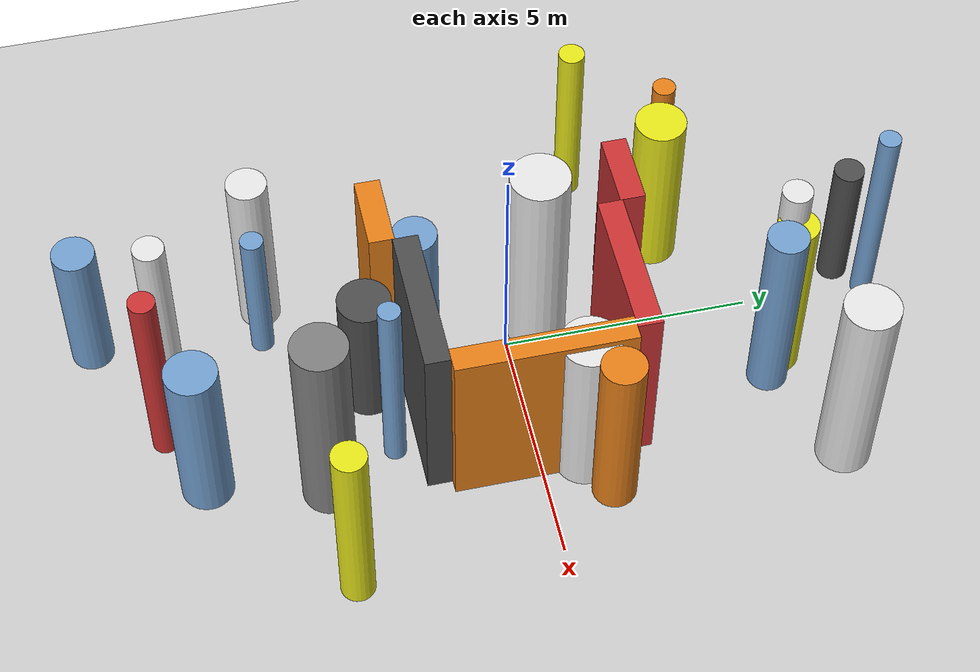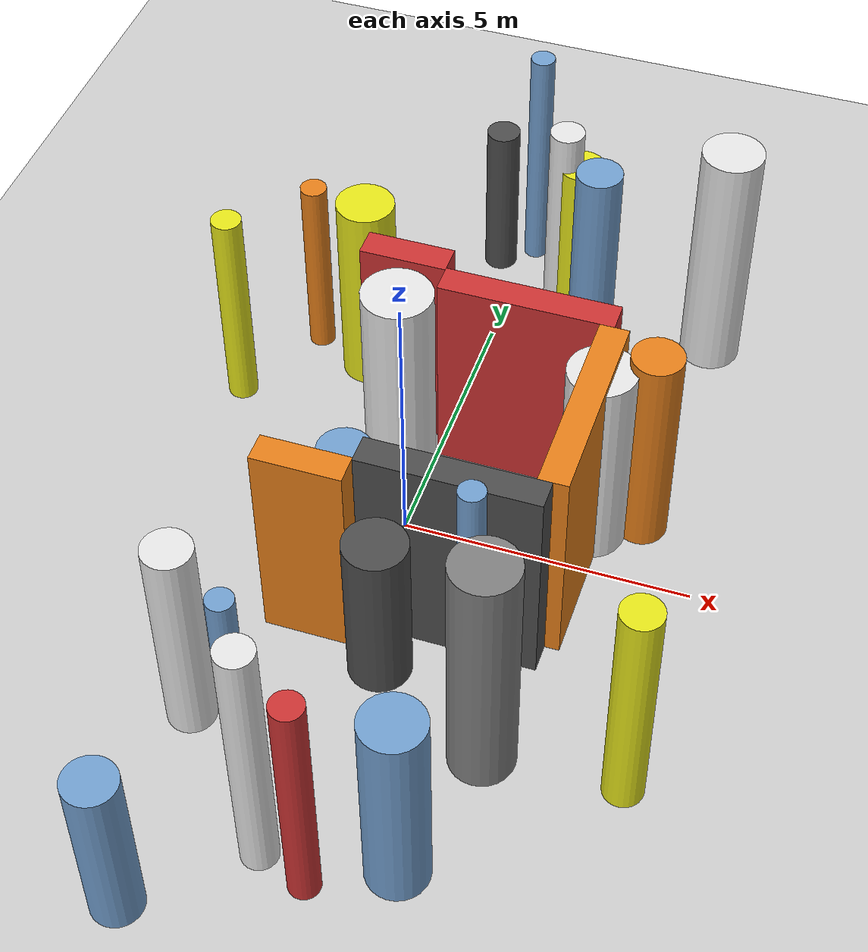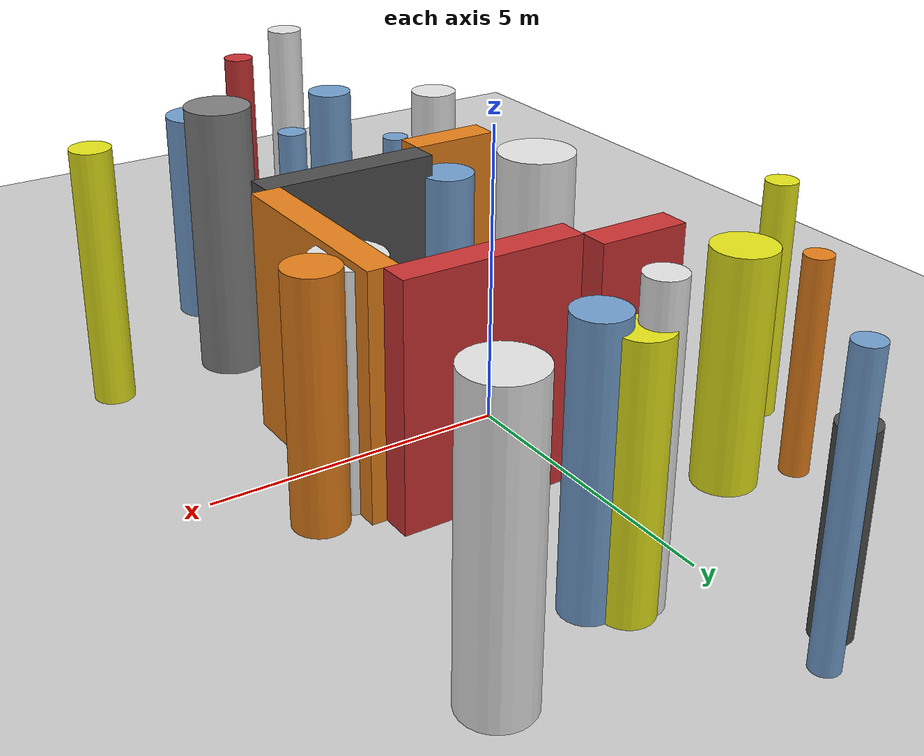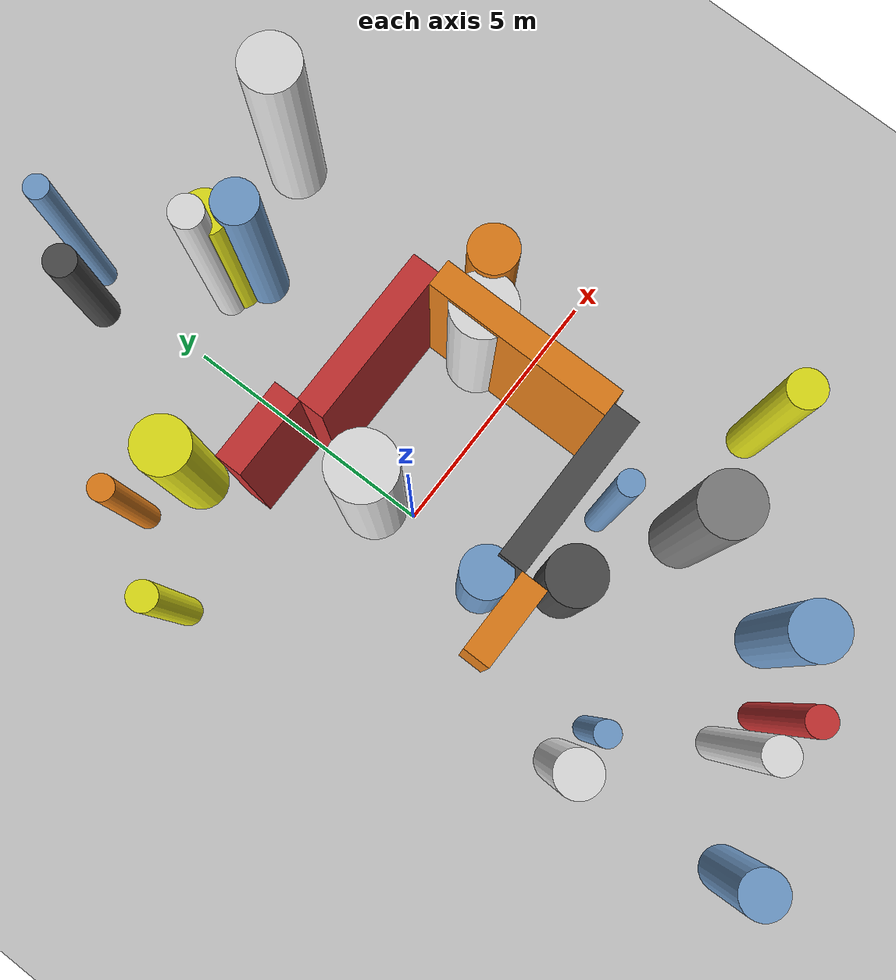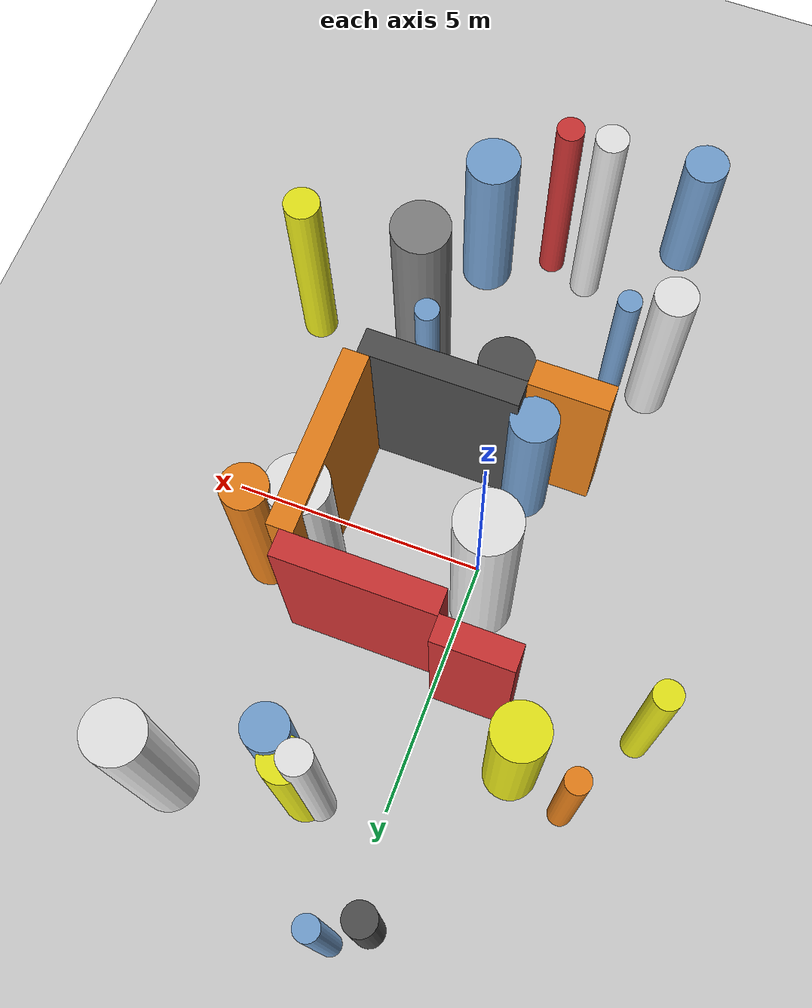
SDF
<?xml version='1.0'?>
<sdf version='1.6'>
  <world name='routeA_rl_v1__dense_recovery__rl_train__cul_de_sac_trap__000084'>
    <!-- Sun light -->
    <light name='sun' type='directional'>
      <cast_shadows>1</cast_shadows>
      <pose>0 0 10 0 0 0</pose>
      <diffuse>0.8 0.8 0.8 1</diffuse>
      <specular>0.2 0.2 0.2 1</specular>
      <attenuation>
        <range>1000</range>
        <constant>0.9</constant>
        <linear>0.01</linear>
        <quadratic>0.001</quadratic>
      </attenuation>
      <direction>-0.5 0.1 -0.9</direction>
    </light>

    <!-- Ground plane -->
    <model name='ground_plane'>
      <static>1</static>
      <link name='link'>
        <collision name='collision'>
          <geometry>
            <plane>
              <normal>0 0 1</normal>
              <size>100 100</size>
            </plane>
          </geometry>
          <surface>
            <contact>
              <collide_bitmask>65535</collide_bitmask>
              <ode/>
            </contact>
            <friction>
              <ode>
                <mu>100</mu>
                <mu2>50</mu2>
              </ode>
              <torsional><ode/></torsional>
            </friction>
            <bounce/>
          </surface>
          <max_contacts>10</max_contacts>
        </collision>
        <visual name='visual'>
          <cast_shadows>0</cast_shadows>
          <geometry>
            <plane>
              <normal>0 0 1</normal>
              <size>100 100</size>
            </plane>
          </geometry>
          <material>
            <script>
              <uri>file://media/materials/scripts/gazebo.material</uri>
              <n>Gazebo/Grey</n>
            </script>
          </material>
        </visual>
      </link>
    </model>

    <!-- Environment -->
    <magnetic_field>6e-06 2.3e-05 -4.2e-05</magnetic_field>
    <atmosphere type='adiabatic'/>
    <physics name='default_physics' default='0' type='ode'>
      <gravity>0 0 -9.8</gravity>
      <max_step_size>0.004</max_step_size>
      <real_time_factor>1</real_time_factor>
      <real_time_update_rate>250</real_time_update_rate>
    </physics>
    <scene>
      <ambient>0.4 0.4 0.4 1</ambient>
      <background>0.7 0.7 0.7 1</background>
      <shadows>1</shadows>
    </scene>
    <wind/>
    <spherical_coordinates>
      <surface_model>EARTH_WGS84</surface_model>
      <latitude_deg>0</latitude_deg>
      <longitude_deg>0</longitude_deg>
      <elevation>0</elevation>
      <heading_deg>0</heading_deg>
    </spherical_coordinates>

    <!-- ============ OBSTACLES (28) ============ -->
    <model name='trap_side_l'>
      <static>1</static>
      <link name='link'>
        <visual name='visual'>
          <geometry>
            <box>
              <size>3.0000 0.5000 4.0000</size>
            </box>
          </geometry>
          <material>
            <script>
              <n>Gazebo/DarkGrey</n>
              <uri>file://media/materials/scripts/gazebo.material</uri>
            </script>
            <ambient>0.3 0.3 0.3 1</ambient>
          </material>
        </visual>
        <collision name='collision'>
          <geometry>
            <box>
              <size>3.0000 0.5000 4.0000</size>
            </box>
          </geometry>
          <max_contacts>10</max_contacts>
          <surface>
            <contact><ode/></contact>
            <bounce/>
            <friction>
              <ode><mu>1</mu><mu2>1</mu2></ode>
              <torsional><ode/></torsional>
            </friction>
          </surface>
        </collision>
      </link>
      <pose>1.5000 -2.0000 2.0000 0 0 0.0000</pose>
    </model>

    <model name='trap_side_r'>
      <static>1</static>
      <link name='link'>
        <visual name='visual'>
          <geometry>
            <box>
              <size>3.0000 0.5000 4.0000</size>
            </box>
          </geometry>
          <material>
            <script>
              <n>Gazebo/Red</n>
              <uri>file://media/materials/scripts/gazebo.material</uri>
            </script>
            <ambient>0.8 0.2 0.2 1</ambient>
          </material>
        </visual>
        <collision name='collision'>
          <geometry>
            <box>
              <size>3.0000 0.5000 4.0000</size>
            </box>
          </geometry>
          <max_contacts>10</max_contacts>
          <surface>
            <contact><ode/></contact>
            <bounce/>
            <friction>
              <ode><mu>1</mu><mu2>1</mu2></ode>
              <torsional><ode/></torsional>
            </friction>
          </surface>
        </collision>
      </link>
      <pose>1.5000 2.0000 2.0000 0 0 0.0000</pose>
    </model>

    <model name='trap_back'>
      <static>1</static>
      <link name='link'>
        <visual name='visual'>
          <geometry>
            <box>
              <size>0.5000 3.5000 4.0000</size>
            </box>
          </geometry>
          <material>
            <script>
              <n>Gazebo/Orange</n>
              <uri>file://media/materials/scripts/gazebo.material</uri>
            </script>
            <ambient>0.9 0.5 0.1 1</ambient>
          </material>
        </visual>
        <collision name='collision'>
          <geometry>
            <box>
              <size>0.5000 3.5000 4.0000</size>
            </box>
          </geometry>
          <max_contacts>10</max_contacts>
          <surface>
            <contact><ode/></contact>
            <bounce/>
            <friction>
              <ode><mu>1</mu><mu2>1</mu2></ode>
              <torsional><ode/></torsional>
            </friction>
          </surface>
        </collision>
      </link>
      <pose>3.0000 0.0000 2.0000 0 0 0.0000</pose>
    </model>

    <model name='trap_funnel_l'>
      <static>1</static>
      <link name='link'>
        <visual name='visual'>
          <geometry>
            <box>
              <size>1.5000 0.5000 4.0000</size>
            </box>
          </geometry>
          <material>
            <script>
              <n>Gazebo/Orange</n>
              <uri>file://media/materials/scripts/gazebo.material</uri>
            </script>
            <ambient>0.9 0.5 0.1 1</ambient>
          </material>
        </visual>
        <collision name='collision'>
          <geometry>
            <box>
              <size>1.5000 0.5000 4.0000</size>
            </box>
          </geometry>
          <max_contacts>10</max_contacts>
          <surface>
            <contact><ode/></contact>
            <bounce/>
            <friction>
              <ode><mu>1</mu><mu2>1</mu2></ode>
              <torsional><ode/></torsional>
            </friction>
          </surface>
        </collision>
      </link>
      <pose>-0.7500 -2.4500 2.0000 0 0 0.0000</pose>
    </model>

    <model name='trap_funnel_r'>
      <static>1</static>
      <link name='link'>
        <visual name='visual'>
          <geometry>
            <box>
              <size>1.5000 0.5000 4.0000</size>
            </box>
          </geometry>
          <material>
            <script>
              <n>Gazebo/Red</n>
              <uri>file://media/materials/scripts/gazebo.material</uri>
            </script>
            <ambient>0.8 0.2 0.2 1</ambient>
          </material>
        </visual>
        <collision name='collision'>
          <geometry>
            <box>
              <size>1.5000 0.5000 4.0000</size>
            </box>
          </geometry>
          <max_contacts>10</max_contacts>
          <surface>
            <contact><ode/></contact>
            <bounce/>
            <friction>
              <ode><mu>1</mu><mu2>1</mu2></ode>
              <torsional><ode/></torsional>
            </friction>
          </surface>
        </collision>
      </link>
      <pose>-0.7500 2.4500 2.0000 0 0 0.0000</pose>
    </model>

    <model name='trap_scatter_1'>
      <static>1</static>
      <link name='link'>
        <visual name='visual'>
          <geometry>
            <cylinder>
              <radius>0.3016</radius>
              <length>3.1056</length>
            </cylinder>
          </geometry>
          <material>
            <script>
              <n>Gazebo/DarkGrey</n>
              <uri>file://media/materials/scripts/gazebo.material</uri>
            </script>
            <ambient>0.3 0.3 0.3 1</ambient>
          </material>
        </visual>
        <collision name='collision'>
          <geometry>
            <cylinder>
              <radius>0.3016</radius>
              <length>3.1056</length>
            </cylinder>
          </geometry>
          <max_contacts>10</max_contacts>
          <surface>
            <contact><ode/></contact>
            <bounce/>
            <friction>
              <ode><mu>1</mu><mu2>1</mu2></ode>
              <torsional><ode/></torsional>
            </friction>
          </surface>
        </collision>
      </link>
      <pose>-0.4830 7.0586 1.5528 0 0 0.0000</pose>
    </model>

    <model name='trap_scatter_2'>
      <static>1</static>
      <link name='link'>
        <visual name='visual'>
          <geometry>
            <cylinder>
              <radius>0.2329</radius>
              <length>3.6089</length>
            </cylinder>
          </geometry>
          <material>
            <script>
              <n>Gazebo/Orange</n>
              <uri>file://media/materials/scripts/gazebo.material</uri>
            </script>
            <ambient>0.9 0.5 0.1 1</ambient>
          </material>
        </visual>
        <collision name='collision'>
          <geometry>
            <cylinder>
              <radius>0.2329</radius>
              <length>3.6089</length>
            </cylinder>
          </geometry>
          <max_contacts>10</max_contacts>
          <surface>
            <contact><ode/></contact>
            <bounce/>
            <friction>
              <ode><mu>1</mu><mu2>1</mu2></ode>
              <torsional><ode/></torsional>
            </friction>
          </surface>
        </collision>
      </link>
      <pose>-2.9933 3.9108 1.8044 0 0 0.0000</pose>
    </model>

    <model name='trap_scatter_3'>
      <static>1</static>
      <link name='link'>
        <visual name='visual'>
          <geometry>
            <cylinder>
              <radius>0.5527</radius>
              <length>4.6691</length>
            </cylinder>
          </geometry>
          <material>
            <script>
              <n>Gazebo/Grey</n>
              <uri>file://media/materials/scripts/gazebo.material</uri>
            </script>
            <ambient>0.5 0.5 0.5 1</ambient>
          </material>
        </visual>
        <collision name='collision'>
          <geometry>
            <cylinder>
              <radius>0.5527</radius>
              <length>4.6691</length>
            </cylinder>
          </geometry>
          <max_contacts>10</max_contacts>
          <surface>
            <contact><ode/></contact>
            <bounce/>
            <friction>
              <ode><mu>1</mu><mu2>1</mu2></ode>
              <torsional><ode/></torsional>
            </friction>
          </surface>
        </collision>
      </link>
      <pose>2.6778 -4.1028 2.3345 0 0 0.0000</pose>
    </model>

    <model name='trap_scatter_4'>
      <static>1</static>
      <link name='link'>
        <visual name='visual'>
          <geometry>
            <cylinder>
              <radius>0.2317</radius>
              <length>3.2589</length>
            </cylinder>
          </geometry>
          <material>
            <script>
              <n>Gazebo/Blue</n>
              <uri>file://media/materials/scripts/gazebo.material</uri>
            </script>
            <ambient>0.447 0.624 0.812 1</ambient>
          </material>
        </visual>
        <collision name='collision'>
          <geometry>
            <cylinder>
              <radius>0.2317</radius>
              <length>3.2589</length>
            </cylinder>
          </geometry>
          <max_contacts>10</max_contacts>
          <surface>
            <contact><ode/></contact>
            <bounce/>
            <friction>
              <ode><mu>1</mu><mu2>1</mu2></ode>
              <torsional><ode/></torsional>
            </friction>
          </surface>
        </collision>
      </link>
      <pose>-1.1417 -4.8095 1.6294 0 0 0.0000</pose>
    </model>

    <model name='trap_scatter_5'>
      <static>1</static>
      <link name='link'>
        <visual name='visual'>
          <geometry>
            <cylinder>
              <radius>0.2611</radius>
              <length>4.5176</length>
            </cylinder>
          </geometry>
          <material>
            <script>
              <n>Gazebo/Red</n>
              <uri>file://media/materials/scripts/gazebo.material</uri>
            </script>
            <ambient>0.8 0.2 0.2 1</ambient>
          </material>
        </visual>
        <collision name='collision'>
          <geometry>
            <cylinder>
              <radius>0.2611</radius>
              <length>4.5176</length>
            </cylinder>
          </geometry>
          <max_contacts>10</max_contacts>
          <surface>
            <contact><ode/></contact>
            <bounce/>
            <friction>
              <ode><mu>1</mu><mu2>1</mu2></ode>
              <torsional><ode/></torsional>
            </friction>
          </surface>
        </collision>
      </link>
      <pose>0.8787 -7.0731 2.2588 0 0 0.0000</pose>
    </model>

    <model name='trap_scatter_6'>
      <static>1</static>
      <link name='link'>
        <visual name='visual'>
          <geometry>
            <cylinder>
              <radius>0.4484</radius>
              <length>3.6471</length>
            </cylinder>
          </geometry>
          <material>
            <script>
              <n>Gazebo/Blue</n>
              <uri>file://media/materials/scripts/gazebo.material</uri>
            </script>
            <ambient>0.447 0.624 0.812 1</ambient>
          </material>
        </visual>
        <collision name='collision'>
          <geometry>
            <cylinder>
              <radius>0.4484</radius>
              <length>3.6471</length>
            </cylinder>
          </geometry>
          <max_contacts>10</max_contacts>
          <surface>
            <contact><ode/></contact>
            <bounce/>
            <friction>
              <ode><mu>1</mu><mu2>1</mu2></ode>
              <torsional><ode/></torsional>
            </friction>
          </surface>
        </collision>
      </link>
      <pose>-0.3115 -1.7679 1.8235 0 0 0.0000</pose>
    </model>

    <model name='trap_scatter_7'>
      <static>1</static>
      <link name='link'>
        <visual name='visual'>
          <geometry>
            <cylinder>
              <radius>0.3040</radius>
              <length>4.9985</length>
            </cylinder>
          </geometry>
          <material>
            <script>
              <n>Gazebo/White</n>
              <uri>file://media/materials/scripts/gazebo.material</uri>
            </script>
            <ambient>0.9 0.9 0.9 1</ambient>
          </material>
        </visual>
        <collision name='collision'>
          <geometry>
            <cylinder>
              <radius>0.3040</radius>
              <length>4.9985</length>
            </cylinder>
          </geometry>
          <max_contacts>10</max_contacts>
          <surface>
            <contact><ode/></contact>
            <bounce/>
            <friction>
              <ode><mu>1</mu><mu2>1</mu2></ode>
              <torsional><ode/></torsional>
            </friction>
          </surface>
        </collision>
      </link>
      <pose>0.0522 -6.7826 2.4992 0 0 0.0000</pose>
    </model>

    <model name='trap_scatter_8'>
      <static>1</static>
      <link name='link'>
        <visual name='visual'>
          <geometry>
            <cylinder>
              <radius>0.5310</radius>
              <length>3.0447</length>
            </cylinder>
          </geometry>
          <material>
            <script>
              <n>Gazebo/DarkGrey</n>
              <uri>file://media/materials/scripts/gazebo.material</uri>
            </script>
            <ambient>0.3 0.3 0.3 1</ambient>
          </material>
        </visual>
        <collision name='collision'>
          <geometry>
            <cylinder>
              <radius>0.5310</radius>
              <length>3.0447</length>
            </cylinder>
          </geometry>
          <max_contacts>10</max_contacts>
          <surface>
            <contact><ode/></contact>
            <bounce/>
            <friction>
              <ode><mu>1</mu><mu2>1</mu2></ode>
              <torsional><ode/></torsional>
            </friction>
          </surface>
        </collision>
      </link>
      <pose>0.5880 -2.9425 1.5223 0 0 0.0000</pose>
    </model>

    <model name='trap_scatter_9'>
      <static>1</static>
      <link name='link'>
        <visual name='visual'>
          <geometry>
            <cylinder>
              <radius>0.4269</radius>
              <length>3.1870</length>
            </cylinder>
          </geometry>
          <material>
            <script>
              <n>Gazebo/Blue</n>
              <uri>file://media/materials/scripts/gazebo.material</uri>
            </script>
            <ambient>0.447 0.624 0.812 1</ambient>
          </material>
        </visual>
        <collision name='collision'>
          <geometry>
            <cylinder>
              <radius>0.4269</radius>
              <length>3.1870</length>
            </cylinder>
          </geometry>
          <max_contacts>10</max_contacts>
          <surface>
            <contact><ode/></contact>
            <bounce/>
            <friction>
              <ode><mu>1</mu><mu2>1</mu2></ode>
              <torsional><ode/></torsional>
            </friction>
          </surface>
        </collision>
      </link>
      <pose>-1.6251 -8.2090 1.5935 0 0 0.0000</pose>
    </model>

    <model name='trap_scatter_10'>
      <static>1</static>
      <link name='link'>
        <visual name='visual'>
          <geometry>
            <cylinder>
              <radius>0.4057</radius>
              <length>4.3679</length>
            </cylinder>
          </geometry>
          <material>
            <script>
              <n>Gazebo/Blue</n>
              <uri>file://media/materials/scripts/gazebo.material</uri>
            </script>
            <ambient>0.447 0.624 0.812 1</ambient>
          </material>
        </visual>
        <collision name='collision'>
          <geometry>
            <cylinder>
              <radius>0.4057</radius>
              <length>4.3679</length>
            </cylinder>
          </geometry>
          <max_contacts>10</max_contacts>
          <surface>
            <contact><ode/></contact>
            <bounce/>
            <friction>
              <ode><mu>1</mu><mu2>1</mu2></ode>
              <torsional><ode/></torsional>
            </friction>
          </surface>
        </collision>
      </link>
      <pose>1.8523 4.9527 2.1839 0 0 0.0000</pose>
    </model>

    <model name='trap_scatter_11'>
      <static>1</static>
      <link name='link'>
        <visual name='visual'>
          <geometry>
            <cylinder>
              <radius>0.3384</radius>
              <length>4.3871</length>
            </cylinder>
          </geometry>
          <material>
            <script>
              <n>Gazebo/Yellow</n>
              <uri>file://media/materials/scripts/gazebo.material</uri>
            </script>
            <ambient>0.9 0.9 0.1 1</ambient>
          </material>
        </visual>
        <collision name='collision'>
          <geometry>
            <cylinder>
              <radius>0.3384</radius>
              <length>4.3871</length>
            </cylinder>
          </geometry>
          <max_contacts>10</max_contacts>
          <surface>
            <contact><ode/></contact>
            <bounce/>
            <friction>
              <ode><mu>1</mu><mu2>1</mu2></ode>
              <torsional><ode/></torsional>
            </friction>
          </surface>
        </collision>
      </link>
      <pose>4.9187 -3.9916 2.1936 0 0 0.0000</pose>
    </model>

    <model name='trap_scatter_12'>
      <static>1</static>
      <link name='link'>
        <visual name='visual'>
          <geometry>
            <cylinder>
              <radius>0.5126</radius>
              <length>3.8593</length>
            </cylinder>
          </geometry>
          <material>
            <script>
              <n>Gazebo/Yellow</n>
              <uri>file://media/materials/scripts/gazebo.material</uri>
            </script>
            <ambient>0.9 0.9 0.1 1</ambient>
          </material>
        </visual>
        <collision name='collision'>
          <geometry>
            <cylinder>
              <radius>0.5126</radius>
              <length>3.8593</length>
            </cylinder>
          </geometry>
          <max_contacts>10</max_contacts>
          <surface>
            <contact><ode/></contact>
            <bounce/>
            <friction>
              <ode><mu>1</mu><mu2>1</mu2></ode>
              <torsional><ode/></torsional>
            </friction>
          </surface>
        </collision>
      </link>
      <pose>-1.8880 3.5297 1.9296 0 0 0.0000</pose>
    </model>

    <model name='trap_scatter_13'>
      <static>1</static>
      <link name='link'>
        <visual name='visual'>
          <geometry>
            <cylinder>
              <radius>0.5149</radius>
              <length>3.8014</length>
            </cylinder>
          </geometry>
          <material>
            <script>
              <n>Gazebo/Blue</n>
              <uri>file://media/materials/scripts/gazebo.material</uri>
            </script>
            <ambient>0.447 0.624 0.812 1</ambient>
          </material>
        </visual>
        <collision name='collision'>
          <geometry>
            <cylinder>
              <radius>0.5149</radius>
              <length>3.8014</length>
            </cylinder>
          </geometry>
          <max_contacts>10</max_contacts>
          <surface>
            <contact><ode/></contact>
            <bounce/>
            <friction>
              <ode><mu>1</mu><mu2>1</mu2></ode>
              <torsional><ode/></torsional>
            </friction>
          </surface>
        </collision>
      </link>
      <pose>2.1107 -6.4228 1.9007 0 0 0.0000</pose>
    </model>

    <model name='trap_scatter_14'>
      <static>1</static>
      <link name='link'>
        <visual name='visual'>
          <geometry>
            <cylinder>
              <radius>0.5440</radius>
              <length>4.6250</length>
            </cylinder>
          </geometry>
          <material>
            <script>
              <n>Gazebo/White</n>
              <uri>file://media/materials/scripts/gazebo.material</uri>
            </script>
            <ambient>0.9 0.9 0.9 1</ambient>
          </material>
        </visual>
        <collision name='collision'>
          <geometry>
            <cylinder>
              <radius>0.5440</radius>
              <length>4.6250</length>
            </cylinder>
          </geometry>
          <max_contacts>10</max_contacts>
          <surface>
            <contact><ode/></contact>
            <bounce/>
            <friction>
              <ode><mu>1</mu><mu2>1</mu2></ode>
              <torsional><ode/></torsional>
            </friction>
          </surface>
        </collision>
      </link>
      <pose>3.9377 5.8785 2.3125 0 0 0.0000</pose>
    </model>

    <model name='trap_scatter_15'>
      <static>1</static>
      <link name='link'>
        <visual name='visual'>
          <geometry>
            <cylinder>
              <radius>0.4060</radius>
              <length>4.0229</length>
            </cylinder>
          </geometry>
          <material>
            <script>
              <n>Gazebo/White</n>
              <uri>file://media/materials/scripts/gazebo.material</uri>
            </script>
            <ambient>0.9 0.9 0.9 1</ambient>
          </material>
        </visual>
        <collision name='collision'>
          <geometry>
            <cylinder>
              <radius>0.4060</radius>
              <length>4.0229</length>
            </cylinder>
          </geometry>
          <max_contacts>10</max_contacts>
          <surface>
            <contact><ode/></contact>
            <bounce/>
            <friction>
              <ode><mu>1</mu><mu2>1</mu2></ode>
              <torsional><ode/></torsional>
            </friction>
          </surface>
        </collision>
      </link>
      <pose>-1.9266 -4.7308 2.0114 0 0 0.0000</pose>
    </model>

    <model name='trap_scatter_16'>
      <static>1</static>
      <link name='link'>
        <visual name='visual'>
          <geometry>
            <cylinder>
              <radius>0.2224</radius>
              <length>4.4992</length>
            </cylinder>
          </geometry>
          <material>
            <script>
              <n>Gazebo/Blue</n>
              <uri>file://media/materials/scripts/gazebo.material</uri>
            </script>
            <ambient>0.447 0.624 0.812 1</ambient>
          </material>
        </visual>
        <collision name='collision'>
          <geometry>
            <cylinder>
              <radius>0.2224</radius>
              <length>4.4992</length>
            </cylinder>
          </geometry>
          <max_contacts>10</max_contacts>
          <surface>
            <contact><ode/></contact>
            <bounce/>
            <friction>
              <ode><mu>1</mu><mu2>1</mu2></ode>
              <torsional><ode/></torsional>
            </friction>
          </surface>
        </collision>
      </link>
      <pose>2.0365 -2.7002 2.2496 0 0 0.0000</pose>
    </model>

    <model name='trap_scatter_17'>
      <static>1</static>
      <link name='link'>
        <visual name='visual'>
          <geometry>
            <cylinder>
              <radius>0.5848</radius>
              <length>3.8771</length>
            </cylinder>
          </geometry>
          <material>
            <script>
              <n>Gazebo/White</n>
              <uri>file://media/materials/scripts/gazebo.material</uri>
            </script>
            <ambient>0.9 0.9 0.9 1</ambient>
          </material>
        </visual>
        <collision name='collision'>
          <geometry>
            <cylinder>
              <radius>0.5848</radius>
              <length>3.8771</length>
            </cylinder>
          </geometry>
          <max_contacts>10</max_contacts>
          <surface>
            <contact><ode/></contact>
            <bounce/>
            <friction>
              <ode><mu>1</mu><mu2>1</mu2></ode>
              <torsional><ode/></torsional>
            </friction>
          </surface>
        </collision>
      </link>
      <pose>3.0511 0.8674 1.9385 0 0 0.0000</pose>
    </model>

    <model name='trap_scatter_18'>
      <static>1</static>
      <link name='link'>
        <visual name='visual'>
          <geometry>
            <cylinder>
              <radius>0.2981</radius>
              <length>4.8203</length>
            </cylinder>
          </geometry>
          <material>
            <script>
              <n>Gazebo/White</n>
              <uri>file://media/materials/scripts/gazebo.material</uri>
            </script>
            <ambient>0.9 0.9 0.9 1</ambient>
          </material>
        </visual>
        <collision name='collision'>
          <geometry>
            <cylinder>
              <radius>0.2981</radius>
              <length>4.8203</length>
            </cylinder>
          </geometry>
          <max_contacts>10</max_contacts>
          <surface>
            <contact><ode/></contact>
            <bounce/>
            <friction>
              <ode><mu>1</mu><mu2>1</mu2></ode>
              <torsional><ode/></torsional>
            </friction>
          </surface>
        </collision>
      </link>
      <pose>1.1715 5.2892 2.4101 0 0 0.0000</pose>
    </model>

    <model name='trap_scatter_19'>
      <static>1</static>
      <link name='link'>
        <visual name='visual'>
          <geometry>
            <cylinder>
              <radius>0.4059</radius>
              <length>4.1585</length>
            </cylinder>
          </geometry>
          <material>
            <script>
              <n>Gazebo/Yellow</n>
              <uri>file://media/materials/scripts/gazebo.material</uri>
            </script>
            <ambient>0.9 0.9 0.1 1</ambient>
          </material>
        </visual>
        <collision name='collision'>
          <geometry>
            <cylinder>
              <radius>0.4059</radius>
              <length>4.1585</length>
            </cylinder>
          </geometry>
          <max_contacts>10</max_contacts>
          <surface>
            <contact><ode/></contact>
            <bounce/>
            <friction>
              <ode><mu>1</mu><mu2>1</mu2></ode>
              <torsional><ode/></torsional>
            </friction>
          </surface>
        </collision>
      </link>
      <pose>1.4564 5.2991 2.0793 0 0 0.0000</pose>
    </model>

    <model name='trap_scatter_21'>
      <static>1</static>
      <link name='link'>
        <visual name='visual'>
          <geometry>
            <cylinder>
              <radius>0.4390</radius>
              <length>4.0534</length>
            </cylinder>
          </geometry>
          <material>
            <script>
              <n>Gazebo/Orange</n>
              <uri>file://media/materials/scripts/gazebo.material</uri>
            </script>
            <ambient>0.9 0.5 0.1 1</ambient>
          </material>
        </visual>
        <collision name='collision'>
          <geometry>
            <cylinder>
              <radius>0.4390</radius>
              <length>4.0534</length>
            </cylinder>
          </geometry>
          <max_contacts>10</max_contacts>
          <surface>
            <contact><ode/></contact>
            <bounce/>
            <friction>
              <ode><mu>1</mu><mu2>1</mu2></ode>
              <torsional><ode/></torsional>
            </friction>
          </surface>
        </collision>
      </link>
      <pose>3.8363 1.2766 2.0267 0 0 0.0000</pose>
    </model>

    <model name='trap_scatter_22'>
      <static>1</static>
      <link name='link'>
        <visual name='visual'>
          <geometry>
            <cylinder>
              <radius>0.2638</radius>
              <length>4.0306</length>
            </cylinder>
          </geometry>
          <material>
            <script>
              <n>Gazebo/Yellow</n>
              <uri>file://media/materials/scripts/gazebo.material</uri>
            </script>
            <ambient>0.9 0.9 0.1 1</ambient>
          </material>
        </visual>
        <collision name='collision'>
          <geometry>
            <cylinder>
              <radius>0.2638</radius>
              <length>4.0306</length>
            </cylinder>
          </geometry>
          <max_contacts>10</max_contacts>
          <surface>
            <contact><ode/></contact>
            <bounce/>
            <friction>
              <ode><mu>1</mu><mu2>1</mu2></ode>
              <torsional><ode/></torsional>
            </friction>
          </surface>
        </collision>
      </link>
      <pose>-3.8934 2.2037 2.0153 0 0 0.0000</pose>
    </model>

    <model name='trap_scatter_23'>
      <static>1</static>
      <link name='link'>
        <visual name='visual'>
          <geometry>
            <cylinder>
              <radius>0.2191</radius>
              <length>4.5610</length>
            </cylinder>
          </geometry>
          <material>
            <script>
              <n>Gazebo/Blue</n>
              <uri>file://media/materials/scripts/gazebo.material</uri>
            </script>
            <ambient>0.447 0.624 0.812 1</ambient>
          </material>
        </visual>
        <collision name='collision'>
          <geometry>
            <cylinder>
              <radius>0.2191</radius>
              <length>4.5610</length>
            </cylinder>
          </geometry>
          <max_contacts>10</max_contacts>
          <surface>
            <contact><ode/></contact>
            <bounce/>
            <friction>
              <ode><mu>1</mu><mu2>1</mu2></ode>
              <torsional><ode/></torsional>
            </friction>
          </surface>
        </collision>
      </link>
      <pose>0.0907 7.5069 2.2805 0 0 0.0000</pose>
    </model>

    <model name='trap_scatter_24'>
      <static>1</static>
      <link name='link'>
        <visual name='visual'>
          <geometry>
            <cylinder>
              <radius>0.5963</radius>
              <length>4.7260</length>
            </cylinder>
          </geometry>
          <material>
            <script>
              <n>Gazebo/White</n>
              <uri>file://media/materials/scripts/gazebo.material</uri>
            </script>
            <ambient>0.9 0.9 0.9 1</ambient>
          </material>
        </visual>
        <collision name='collision'>
          <geometry>
            <cylinder>
              <radius>0.5963</radius>
              <length>4.7260</length>
            </cylinder>
          </geometry>
          <max_contacts>10</max_contacts>
          <surface>
            <contact><ode/></contact>
            <bounce/>
            <friction>
              <ode><mu>1</mu><mu2>1</mu2></ode>
              <torsional><ode/></torsional>
            </friction>
          </surface>
        </collision>
      </link>
      <pose>-0.2929 0.6835 2.3630 0 0 0.0000</pose>
    </model>

    <!-- GUI camera -->
    <gui fullscreen='0'>
      <camera name='user_camera'>
        <pose>-15 0 18 0 0.85 0.15</pose>
        <view_controller>orbit</view_controller>
        <projection_type>perspective</projection_type>
      </camera>
    </gui>
  </world>
</sdf>
